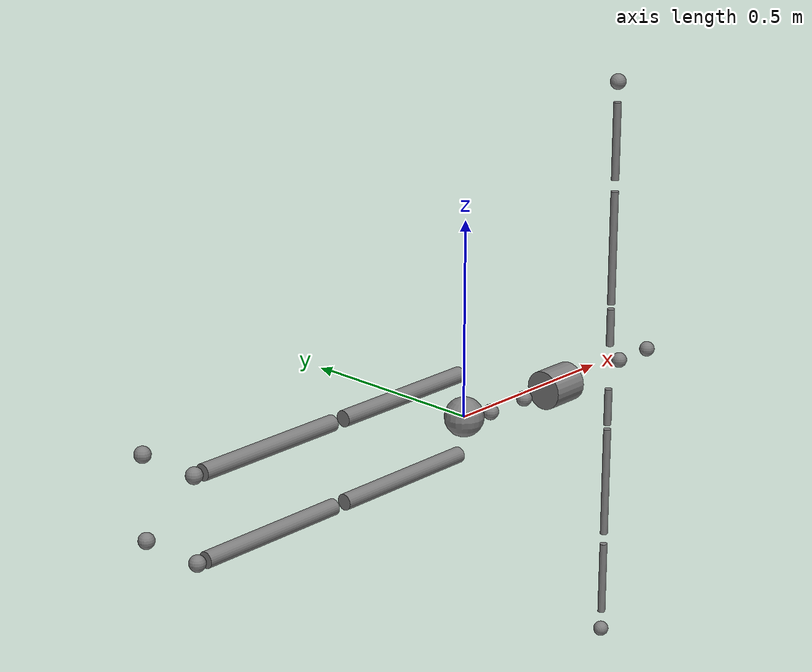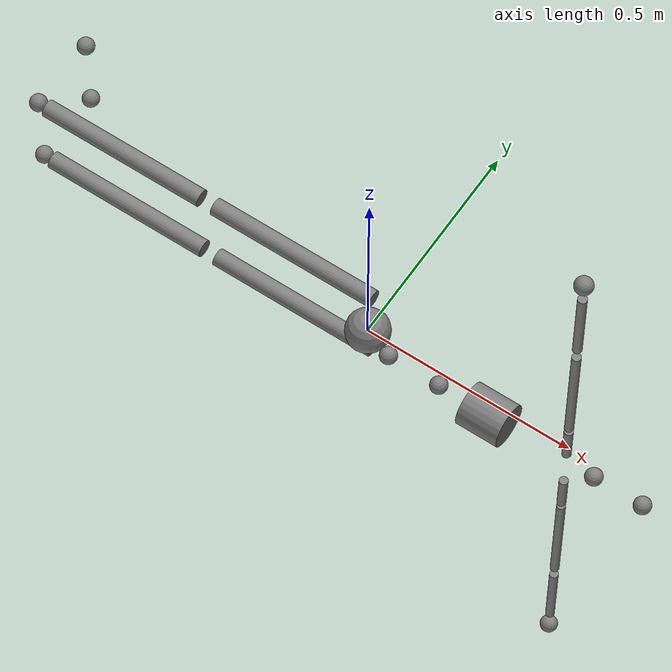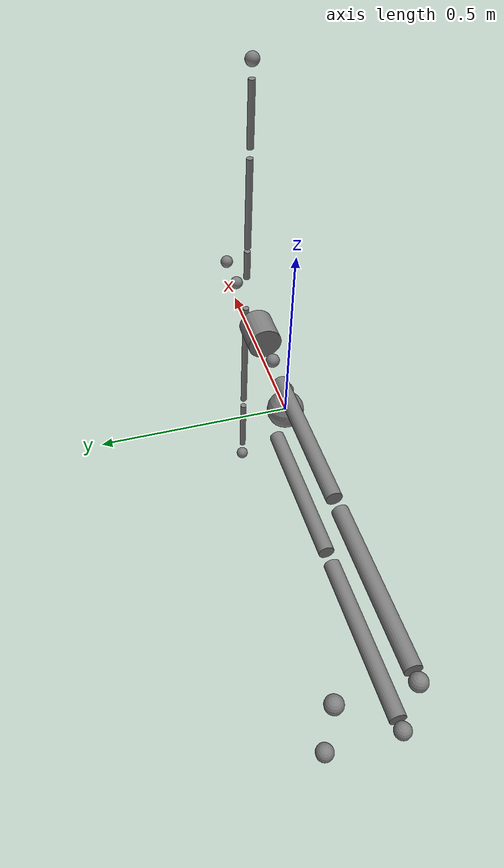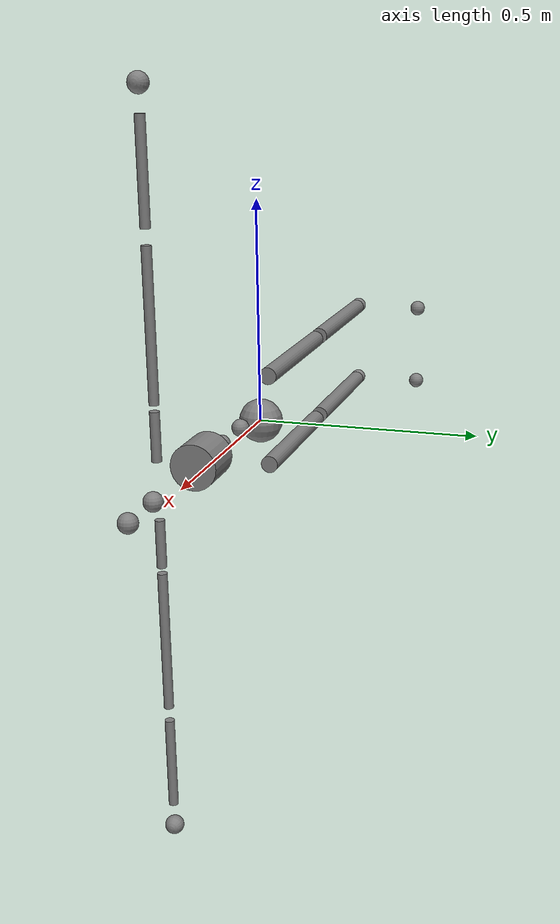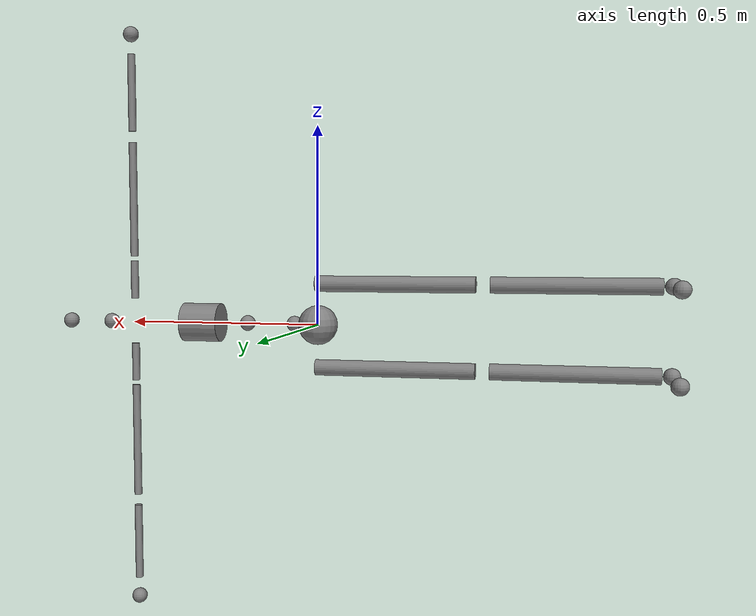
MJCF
<?xml version='1.0' encoding='utf-8'?>
<mujoco model="bvh_human_3dof_tpose">
  <compiler meshdir="meshes"
               fusestatic="false"
              discardvisual="false"
              strippath="false"
              balanceinertia="true"/>
  <worldbody>
    <body name="Hips">
      <inertial pos="0 0 0" mass="1" diaginertia="0.01 0.01 0.01" />
      <joint name="floating_base_joint" type="free" />
      <geom size="0.05" contype="0" conaffinity="0" group="1" density="0" />
      <body name="LeftUpLeg_rz" pos="0.00103457 0.0185782 0.105485" quat="-2.32051e-08 0 0 -1">
        <inertial pos="0 0 0" mass="1" diaginertia="0.01 0.01 0.01" />
        <joint name="Hips_to_LeftUpLeg_rz" pos="0 0 0" axis="0 0 1" range="-3.14159 3.14159" actuatorfrcrange="-100 100" />
        <body name="LeftUpLeg_ry">
          <inertial pos="0 0 0" mass="1" diaginertia="0.01 0.01 0.01" />
          <joint name="LeftUpLeg_rz_to_LeftUpLeg_ry" pos="0 0 0" axis="0 1 0" range="-3.14159 3.14159" actuatorfrcrange="-100 100" />
          <body name="LeftUpLeg" quat="-2.32051e-08 1 0 0">
            <inertial pos="0 0 0" mass="1" diaginertia="0.01 0.01 0.01" />
            <joint name="LeftUpLeg_ry_to_LeftUpLeg" pos="0 0 0" axis="1 0 0" range="-3.14159 3.14159" actuatorfrcrange="-100 100" />
            <geom size="0.02 0.2" pos="0.2 0 0" quat="0.707388 0 0.706825 0" type="cylinder" contype="0" conaffinity="0" group="1" density="0" />
            <body name="LeftLeg_rz" pos="0.435 -1.9e-07 2e-08">
              <inertial pos="0 0 0" mass="1" diaginertia="0.01 0.01 0.01" />
              <joint name="LeftUpLeg_to_LeftLeg_rz" pos="0 0 0" axis="0 0 1" range="-3.14159 3.14159" actuatorfrcrange="-100 100" />
              <body name="LeftLeg_ry">
                <inertial pos="0 0 0" mass="1" diaginertia="0.01 0.01 0.01" />
                <body name="LeftLeg">
                  <inertial pos="0 0 0" mass="1" diaginertia="0.01 0.01 0.01" />
                  <geom size="0.02 0.2" pos="0.2 0 0" quat="0.707388 0 0.706825 0" type="cylinder" contype="0" conaffinity="0" group="1" density="0" />
                  <body name="LeftFoot_rz" pos="0.423722 -4e-08 3e-08" quat="0.707107 0 0 0.707107">
                    <inertial pos="0 0 0" mass="1" diaginertia="0.01 0.01 0.01" />
                    <joint name="LeftLeg_to_LeftFoot_rz" pos="0 0 0" axis="0 0 1" range="-3.14159 3.14159" actuatorfrcrange="-100 100" />
                    <body name="LeftFoot_ry">
                      <inertial pos="0 0 0" mass="1" diaginertia="0.01 0.01 0.01" />
                      <body name="LeftFoot">
                        <inertial pos="0 0 0" mass="1" diaginertia="0.01 0.01 0.01" />
                        <joint name="LeftFoot_ry_to_LeftFoot" pos="0 0 0" axis="1 0 0" range="-3.14159 3.14159" actuatorfrcrange="-100 100" />
                        <geom size="0.02" contype="0" conaffinity="0" group="1" density="0" />
                        <body name="LeftToe_rz" pos="0.173 2e-08 6e-08">
                          <inertial pos="0 0 0" mass="1" diaginertia="0.01 0.01 0.01" />
                          <body name="LeftToe_ry">
                            <inertial pos="0 0 0" mass="1" diaginertia="0.01 0.01 0.01" />
                            <body name="LeftToe">
                              <inertial pos="0 0 0" mass="1" diaginertia="0.01 0.01 0.01" />
                              <geom size="0.02" contype="0" conaffinity="0" group="1" density="0" />
                              <body name="LeftToe_End">
                                <inertial pos="0 0 0" mass="1" diaginertia="0.01 0.01 0.01" />
                                <geom size="0.02" contype="0" conaffinity="0" group="1" density="0" />
                              </body>
                            </body>
                          </body>
                        </body>
                      </body>
                    </body>
                  </body>
                </body>
              </body>
            </body>
          </body>
        </body>
      </body>
      <body name="RightUpLeg_rz" pos="0.00103459 0.0185782 -0.105485" quat="-2.32051e-08 0 0 -1">
        <inertial pos="0 0 0" mass="1" diaginertia="0.01 0.01 0.01" />
        <joint name="Hips_to_RightUpLeg_rz" pos="0 0 0" axis="0 0 1" range="-3.14159 3.14159" actuatorfrcrange="-100 100" />
        <body name="RightUpLeg_ry">
          <inertial pos="0 0 0" mass="1" diaginertia="0.01 0.01 0.01" />
          <joint name="RightUpLeg_rz_to_RightUpLeg_ry" pos="0 0 0" axis="0 1 0" range="-3.14159 3.14159" actuatorfrcrange="-100 100" />
          <body name="RightUpLeg" quat="-2.32051e-08 -1 0 0">
            <inertial pos="0 0 0" mass="1" diaginertia="0.01 0.01 0.01" />
            <joint name="RightUpLeg_ry_to_RightUpLeg" pos="0 0 0" axis="1 0 0" range="-3.14159 3.14159" actuatorfrcrange="-100 100" />
            <geom size="0.02 0.2" pos="0.2 0 0" quat="0.707388 0 0.706825 0" type="cylinder" contype="0" conaffinity="0" group="1" density="0" />
            <body name="RightLeg_rz" pos="0.435 -1.5e-07 1e-07">
              <inertial pos="0 0 0" mass="1" diaginertia="0.01 0.01 0.01" />
              <joint name="RightUpLeg_to_RightLeg_rz" pos="0 0 0" axis="0 0 1" range="-3.14159 3.14159" actuatorfrcrange="-100 100" />
              <body name="RightLeg_ry">
                <inertial pos="0 0 0" mass="1" diaginertia="0.01 0.01 0.01" />
                <body name="RightLeg">
                  <inertial pos="0 0 0" mass="1" diaginertia="0.01 0.01 0.01" />
                  <geom size="0.02 0.2" pos="0.2 0 0" quat="0.707388 0 0.706825 0" type="cylinder" contype="0" conaffinity="0" group="1" density="0" />
                  <body name="RightFoot_rz" pos="0.423723 -8e-08 1e-07" quat="0.707107 0 0 0.707107">
                    <inertial pos="0 0 0" mass="1" diaginertia="0.01 0.01 0.01" />
                    <joint name="RightLeg_to_RightFoot_rz" pos="0 0 0" axis="0 0 1" range="-3.14159 3.14159" actuatorfrcrange="-100 100" />
                    <body name="RightFoot_ry">
                      <inertial pos="0 0 0" mass="1" diaginertia="0.01 0.01 0.01" />
                      <body name="RightFoot">
                        <inertial pos="0 0 0" mass="1" diaginertia="0.01 0.01 0.01" />
                        <joint name="RightFoot_ry_to_RightFoot" pos="0 0 0" axis="1 0 0" range="-3.14159 3.14159" actuatorfrcrange="-100 100" />
                        <geom size="0.02" contype="0" conaffinity="0" group="1" density="0" />
                        <body name="RightToe_rz" pos="0.173 -5e-08 0">
                          <inertial pos="0 0 0" mass="1" diaginertia="0.01 0.01 0.01" />
                          <body name="RightToe_ry">
                            <inertial pos="0 0 0" mass="1" diaginertia="0.01 0.01 0.01" />
                            <body name="RightToe">
                              <inertial pos="0 0 0" mass="1" diaginertia="0.01 0.01 0.01" />
                              <geom size="0.02" contype="0" conaffinity="0" group="1" density="0" />
                              <body name="RightToe_End">
                                <inertial pos="0 0 0" mass="1" diaginertia="0.01 0.01 0.01" />
                                <geom size="0.02" contype="0" conaffinity="0" group="1" density="0" />
                              </body>
                            </body>
                          </body>
                        </body>
                      </body>
                    </body>
                  </body>
                </body>
              </body>
            </body>
          </body>
        </body>
      </body>
      <body name="Spine_rz" pos="0.0690197 -0.0260374 1e-08">
        <inertial pos="0 0 0" mass="1" diaginertia="0.01 0.01 0.01" />
        <body name="Spine_ry">
          <inertial pos="0 0 0" mass="1" diaginertia="0.01 0.01 0.01" />
          <body name="Spine">
            <inertial pos="0 0 0" mass="1" diaginertia="0.01 0.01 0.01" />
            <joint name="Spine_ry_to_Spine" pos="0 0 0" axis="1 0 0" range="-3.14159 3.14159" actuatorfrcrange="-100 100" />
            <geom size="0.02" contype="0" conaffinity="0" group="1" density="0" />
            <body name="Spine1_rz" pos="0.125881 1.6e-07 -5e-08">
              <inertial pos="0 0 0" mass="1" diaginertia="0.01 0.01 0.01" />
              <joint name="Spine_to_Spine1_rz" pos="0 0 0" axis="0 0 1" range="-3.14159 3.14159" actuatorfrcrange="-100 100" />
              <body name="Spine1_ry">
                <inertial pos="0 0 0" mass="1" diaginertia="0.01 0.01 0.01" />
                <joint name="Spine1_rz_to_Spine1_ry" pos="0 0 0" axis="0 1 0" range="-3.14159 3.14159" actuatorfrcrange="-100 100" />
                <body name="Spine1">
                  <inertial pos="0 0 0" mass="1" diaginertia="0.01 0.01 0.01" />
                  <geom size="0.02" contype="0" conaffinity="0" group="1" density="0" />
                  <body name="Spine2_rz" pos="0.123432 -1.1e-07 -5e-08">
                    <inertial pos="0 0 0" mass="1" diaginertia="0.01 0.01 0.01" />
                    <body name="Spine2_ry">
                      <inertial pos="0 0 0" mass="1" diaginertia="0.01 0.01 0.01" />
                      <body name="Spine2">
                        <inertial pos="0 0 0" mass="1" diaginertia="0.01 0.01 0.01" />
                        <geom size="0.05 0.05" quat="0.707388 0 0.706825 0" type="cylinder" contype="0" conaffinity="0" group="1" density="0" />
                        <body name="Neck_rz" pos="0.258329 8e-08 6e-08">
                          <inertial pos="0 0 0" mass="1" diaginertia="0.01 0.01 0.01" />
                          <body name="Neck_ry">
                            <inertial pos="0 0 0" mass="1" diaginertia="0.01 0.01 0.01" />
                            <body name="Neck">
                              <inertial pos="0 0 0" mass="1" diaginertia="0.01 0.01 0.01" />
                              <geom size="0.02" contype="0" conaffinity="0" group="1" density="0" />
                              <body name="Head_rz" pos="0.117666 -4e-08 -2e-08">
                                <inertial pos="0 0 0" mass="1" diaginertia="0.01 0.01 0.01" />
                                <body name="Head_ry">
                                  <inertial pos="0 0 0" mass="1" diaginertia="0.01 0.01 0.01" />
                                  <body name="Head">
                                    <inertial pos="0 0 0" mass="1" diaginertia="0.01 0.01 0.01" />
                                    <geom size="0.02" contype="0" conaffinity="0" group="1" density="0" />
                                    <body name="Head_End">
                                      <inertial pos="0 0 0" mass="1" diaginertia="0.01 0.01 0.01" />
                                      <geom size="0.02" contype="0" conaffinity="0" group="1" density="0" />
                                    </body>
                                  </body>
                                </body>
                              </body>
                            </body>
                          </body>
                        </body>
                        <body name="LeftShoulder_rz" pos="0.197459 -0.0148037 0.0600012" quat="0.707107 0 0 -0.707107">
                          <inertial pos="0 0 0" mass="1" diaginertia="0.01 0.01 0.01" />
                          <body name="LeftShoulder_ry" quat="0.707107 0 -0.707107 0">
                            <inertial pos="0 0 0" mass="1" diaginertia="0.01 0.01 0.01" />
                            <body name="LeftShoulder" quat="0.707107 -0.707107 0 0">
                              <inertial pos="0 0 0" mass="1" diaginertia="0.01 0.01 0.01" />
                              <joint name="LeftShoulder_ry_to_LeftShoulder" pos="0 0 0" axis="0 1 0" range="-3.14159 3.14159" actuatorfrcrange="-100 100" />
                              <geom size="0.01 0.05" pos="0.05 0 0" quat="0.707388 0 0.706825 0" type="cylinder" contype="0" conaffinity="0" group="1" density="0" />
                              <body name="LeftArm_rz" pos="0.112841 -1.2e-07 -8e-08">
                                <inertial pos="0 0 0" mass="1" diaginertia="0.01 0.01 0.01" />
                                <joint name="LeftShoulder_to_LeftArm_rz" pos="0 0 0" axis="0 0 1" range="-3.14159 3.14159" actuatorfrcrange="-100 100" />
                                <body name="LeftArm_ry">
                                  <inertial pos="0 0 0" mass="1" diaginertia="0.01 0.01 0.01" />
                                  <joint name="LeftArm_rz_to_LeftArm_ry" pos="0 0 0" axis="0 1 0" range="-3.14159 3.14159" actuatorfrcrange="-100 100" />
                                  <body name="LeftArm">
                                    <inertial pos="0 0 0" mass="1" diaginertia="0.01 0.01 0.01" />
                                    <joint name="LeftArm_ry_to_LeftArm" pos="0 0 0" axis="1 0 0" range="-3.14159 3.14159" actuatorfrcrange="-100 100" />
                                    <geom size="0.01 0.15" pos="0.15 0 0" quat="0.707388 0 0.706825 0" type="cylinder" contype="0" conaffinity="0" group="1" density="0" />
                                    <body name="LeftForeArm_rz" pos="0.33 2e-08 2.2e-07">
                                      <inertial pos="0 0 0" mass="1" diaginertia="0.01 0.01 0.01" />
                                      <joint name="LeftArm_to_LeftForeArm_rz" pos="0 0 0" axis="0 0 1" range="-3.14159 3.14159" actuatorfrcrange="-100 100" />
                                      <body name="LeftForeArm_ry">
                                        <inertial pos="0 0 0" mass="1" diaginertia="0.01 0.01 0.01" />
                                        <body name="LeftForeArm">
                                          <inertial pos="0 0 0" mass="1" diaginertia="0.01 0.01 0.01" />
                                          <geom size="0.01 0.1" pos="0.1 0 0" quat="0.707388 0 0.706825 0" type="cylinder" contype="0" conaffinity="0" group="1" density="0" />
                                          <body name="LeftHand_rz" pos="0.252 6e-08 1.5e-07">
                                            <inertial pos="0 0 0" mass="1" diaginertia="0.01 0.01 0.01" />
                                            <body name="LeftHand_ry">
                                              <inertial pos="0 0 0" mass="1" diaginertia="0.01 0.01 0.01" />
                                              <body name="LeftHand">
                                                <inertial pos="0 0 0" mass="1" diaginertia="0.01 0.01 0.01" />
                                                <geom size="0.02" contype="0" conaffinity="0" group="1" density="0" />
                                                <body name="LeftHand_End">
                                                  <inertial pos="0 0 0" mass="1" diaginertia="0.01 0.01 0.01" />
                                                  <geom size="0.02" contype="0" conaffinity="0" group="1" density="0" />
                                                </body>
                                              </body>
                                            </body>
                                          </body>
                                        </body>
                                      </body>
                                    </body>
                                  </body>
                                </body>
                              </body>
                            </body>
                          </body>
                        </body>
                        <body name="RightShoulder_rz" pos="0.197461 -0.0148038 -0.0600007" quat="0.707107 0 0 0.707107">
                          <inertial pos="0 0 0" mass="1" diaginertia="0.01 0.01 0.01" />
                          <body name="RightShoulder_ry" quat="0.707107 0 0.707107 0">
                            <inertial pos="0 0 0" mass="1" diaginertia="0.01 0.01 0.01" />
                            <body name="RightShoulder" quat="0.707107 -0.707107 0 0">
                              <inertial pos="0 0 0" mass="1" diaginertia="0.01 0.01 0.01" />
                              <joint name="RightShoulder_ry_to_RightShoulder" pos="0 0 0" axis="0 1 0" range="-3.14159 3.14159" actuatorfrcrange="-100 100" />
                              <geom size="0.01 0.05" pos="0.05 0 0" quat="0.707388 0 0.706825 0" type="cylinder" contype="0" conaffinity="0" group="1" density="0" />
                              <body name="RightArm_rz" pos="0.112841 -3.5e-07 -8e-08">
                                <inertial pos="0 0 0" mass="1" diaginertia="0.01 0.01 0.01" />
                                <joint name="RightShoulder_to_RightArm_rz" pos="0 0 0" axis="0 0 1" range="-3.14159 3.14159" actuatorfrcrange="-100 100" />
                                <body name="RightArm_ry">
                                  <inertial pos="0 0 0" mass="1" diaginertia="0.01 0.01 0.01" />
                                  <joint name="RightArm_rz_to_RightArm_ry" pos="0 0 0" axis="0 1 0" range="-3.14159 3.14159" actuatorfrcrange="-100 100" />
                                  <body name="RightArm">
                                    <inertial pos="0 0 0" mass="1" diaginertia="0.01 0.01 0.01" />
                                    <joint name="RightArm_ry_to_RightArm" pos="0 0 0" axis="1 0 0" range="-3.14159 3.14159" actuatorfrcrange="-100 100" />
                                    <geom size="0.01 0.15" pos="0.15 0 0" quat="0.707388 0 0.706825 0" type="cylinder" contype="0" conaffinity="0" group="1" density="0" />
                                    <body name="RightForeArm_rz" pos="0.330001 1.9e-07 6e-08">
                                      <inertial pos="0 0 0" mass="1" diaginertia="0.01 0.01 0.01" />
                                      <joint name="RightArm_to_RightForeArm_rz" pos="0 0 0" axis="0 0 1" range="-3.14159 3.14159" actuatorfrcrange="-100 100" />
                                      <body name="RightForeArm_ry">
                                        <inertial pos="0 0 0" mass="1" diaginertia="0.01 0.01 0.01" />
                                        <body name="RightForeArm">
                                          <inertial pos="0 0 0" mass="1" diaginertia="0.01 0.01 0.01" />
                                          <geom size="0.01 0.1" pos="0.1 0 0" quat="0.707388 0 0.706825 0" type="cylinder" contype="0" conaffinity="0" group="1" density="0" />
                                          <body name="RightHand_rz" pos="0.251998 1.39e-06 4.31e-06">
                                            <inertial pos="0 0 0" mass="1" diaginertia="0.01 0.01 0.01" />
                                            <body name="RightHand_ry">
                                              <inertial pos="0 0 0" mass="1" diaginertia="0.01 0.01 0.01" />
                                              <body name="RightHand">
                                                <inertial pos="0 0 0" mass="1" diaginertia="0.01 0.01 0.01" />
                                                <geom size="0.02" contype="0" conaffinity="0" group="1" density="0" />
                                                <body name="RightHand_End">
                                                  <inertial pos="0 0 0" mass="1" diaginertia="0.01 0.01 0.01" />
                                                  <geom size="0.02" contype="0" conaffinity="0" group="1" density="0" />
                                                </body>
                                              </body>
                                            </body>
                                          </body>
                                        </body>
                                      </body>
                                    </body>
                                  </body>
                                </body>
                              </body>
                            </body>
                          </body>
                        </body>
                      </body>
                    </body>
                  </body>
                </body>
              </body>
            </body>
          </body>
        </body>
      </body>
    </body>
  </worldbody>
  <actuator>
    <motor name="Hips_to_LeftUpLeg_rz" joint="Hips_to_LeftUpLeg_rz" gear="1" ctrlrange="-1 1" />
    <motor name="LeftUpLeg_rz_to_LeftUpLeg_ry" joint="LeftUpLeg_rz_to_LeftUpLeg_ry" gear="1" ctrlrange="-1 1" />
    <motor name="LeftUpLeg_ry_to_LeftUpLeg" joint="LeftUpLeg_ry_to_LeftUpLeg" gear="1" ctrlrange="-1 1" />
    <motor name="LeftUpLeg_to_LeftLeg_rz" joint="LeftUpLeg_to_LeftLeg_rz" gear="1" ctrlrange="-1 1" />
    <motor name="LeftLeg_to_LeftFoot_rz" joint="LeftLeg_to_LeftFoot_rz" gear="1" ctrlrange="-1 1" />
    <motor name="LeftFoot_ry_to_LeftFoot" joint="LeftFoot_ry_to_LeftFoot" gear="1" ctrlrange="-1 1" />
    <motor name="Hips_to_RightUpLeg_rz" joint="Hips_to_RightUpLeg_rz" gear="1" ctrlrange="-1 1" />
    <motor name="RightUpLeg_rz_to_RightUpLeg_ry" joint="RightUpLeg_rz_to_RightUpLeg_ry" gear="1" ctrlrange="-1 1" />
    <motor name="RightUpLeg_ry_to_RightUpLeg" joint="RightUpLeg_ry_to_RightUpLeg" gear="1" ctrlrange="-1 1" />
    <motor name="RightUpLeg_to_RightLeg_rz" joint="RightUpLeg_to_RightLeg_rz" gear="1" ctrlrange="-1 1" />
    <motor name="RightLeg_to_RightFoot_rz" joint="RightLeg_to_RightFoot_rz" gear="1" ctrlrange="-1 1" />
    <motor name="RightFoot_ry_to_RightFoot" joint="RightFoot_ry_to_RightFoot" gear="1" ctrlrange="-1 1" />
    <motor name="Spine_ry_to_Spine" joint="Spine_ry_to_Spine" gear="1" ctrlrange="-1 1" />
    <motor name="Spine_to_Spine1_rz" joint="Spine_to_Spine1_rz" gear="1" ctrlrange="-1 1" />
    <motor name="Spine1_rz_to_Spine1_ry" joint="Spine1_rz_to_Spine1_ry" gear="1" ctrlrange="-1 1" />
    <motor name="LeftShoulder_ry_to_LeftShoulder" joint="LeftShoulder_ry_to_LeftShoulder" gear="1" ctrlrange="-1 1" />
    <motor name="LeftShoulder_to_LeftArm_rz" joint="LeftShoulder_to_LeftArm_rz" gear="1" ctrlrange="-1 1" />
    <motor name="LeftArm_rz_to_LeftArm_ry" joint="LeftArm_rz_to_LeftArm_ry" gear="1" ctrlrange="-1 1" />
    <motor name="LeftArm_ry_to_LeftArm" joint="LeftArm_ry_to_LeftArm" gear="1" ctrlrange="-1 1" />
    <motor name="LeftArm_to_LeftForeArm_rz" joint="LeftArm_to_LeftForeArm_rz" gear="1" ctrlrange="-1 1" />
    <motor name="RightShoulder_ry_to_RightShoulder" joint="RightShoulder_ry_to_RightShoulder" gear="1" ctrlrange="-1 1" />
    <motor name="RightShoulder_to_RightArm_rz" joint="RightShoulder_to_RightArm_rz" gear="1" ctrlrange="-1 1" />
    <motor name="RightArm_rz_to_RightArm_ry" joint="RightArm_rz_to_RightArm_ry" gear="1" ctrlrange="-1 1" />
    <motor name="RightArm_ry_to_RightArm" joint="RightArm_ry_to_RightArm" gear="1" ctrlrange="-1 1" />
    <motor name="RightArm_to_RightForeArm_rz" joint="RightArm_to_RightForeArm_rz" gear="1" ctrlrange="-1 1" />
  </actuator>
</mujoco>
